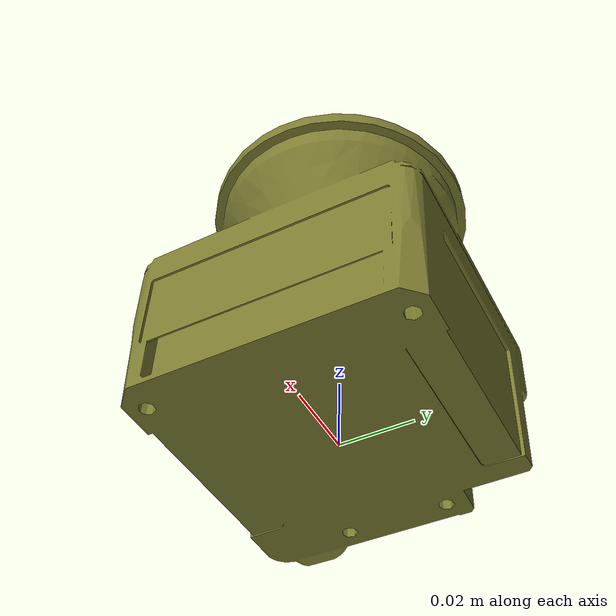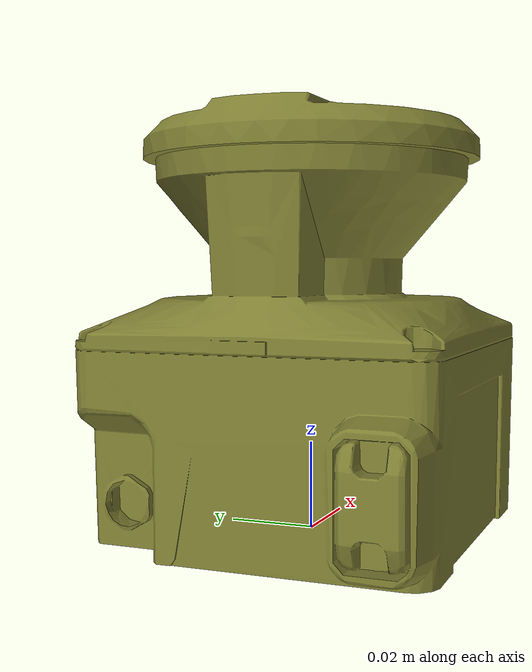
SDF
<?xml version='1.0'?>
<sdf version='1.6'>
<model name="hokuyo_UAM05LPT301_gpu">
  <static>0</static>
  <link name="link">
    <inertial>
      <mass>0.8</mass>
      <inertia>
        <ixx>0.00043333</ixx>
        <ixy>0</ixy>
        <ixz>0</ixz>
        <iyy>0.00043333</iyy>
        <iyz>0</iyz>
        <izz>0.00065333</izz>
      </inertia>
    </inertial>
    <self_collide>0</self_collide>
    <enable_wind>0</enable_wind>
    <kinematic>0</kinematic>

    <visual name="visual">
      <geometry>
        <mesh>
          <uri>model://hokuyo_UAM05LPT301_gpu/meshes/uam05lp.stl</uri>
          <scale>1 1 1</scale>
        </mesh>
      </geometry>
      <material>
        <lighting>1</lighting>
        <ambient>0.05 0.05 0.05 1</ambient>
        <diffuse>0.5 0.5 0.2 1</diffuse>
        <specular>0.5 0.5 0.1 1</specular>
        <emissive>0.02 0.02 0.02 1</emissive>
      </material>
    </visual>

    <collision name="collision">
      <laser_retro>0</laser_retro>
      <max_contacts>1</max_contacts>
      <pose>0 0 0.02 0 -0 0</pose>
      <geometry>
        <box>
          <size>0.07 0.07 0.04</size>
        </box>
      </geometry>
      <surface>
        <friction>
          <ode>
            <mu>0.9</mu>
            <mu2>0.8</mu2>
            <fdir1>0 0 0</fdir1>
            <slip1>0.0</slip1>
            <slip2>0.0</slip2>
          </ode>
        </friction>
        <contact>
          <poissons_ratio>0.33</poissons_ratio>
          <elastic_modulus>0.33</elastic_modulus>
          <ode>
            <soft_cfm>0.0</soft_cfm>
            <soft_erp>0.2</soft_erp>
            <kp>1e+12</kp>
            <kd>0.00</kd>
            <max_vel>0.01</max_vel>
            <min_depth>0.001</min_depth>
          </ode>
        </contact>
      </surface>
    </collision>

    <sensor name="hokuyo_laser" type="gpu_lidar">
      <pose>0 0 0.070 0 -0 0</pose>
      <lidar>
        <scan>
          <horizontal>
            <samples>1081</samples>
            <resolution>1</resolution>
            <min_angle>-2.35619</min_angle>
            <max_angle>+2.35619</max_angle>
          </horizontal>
        </scan>
        <range>
          <min>0.03</min>
          <max>20</max>
          <resolution>0.004363</resolution><!-- 0.25 deg -->
        </range>
      </lidar>
      <always_on>1</always_on>
      <update_rate>33.33333</update_rate>
      <visualize>false</visualize>

      <plugin name="LaserPlugin" filename="libLaserPlugin.so" >
        <ros2>
          <topic_name>scan</topic_name>
          <frame_id>base_scan</frame_id>
        </ros2>
        <output_type>LaserScan</output_type>
        <intensity>false</intensity>
        <filter>
          <angle>
            <horizontal>
              <lower>-1.845000</lower>
              <upper>1.845000</upper>
            </horizontal>
          </angle>
        </filter>
      </plugin>
    </sensor>
  </link>
</model>
</sdf>
